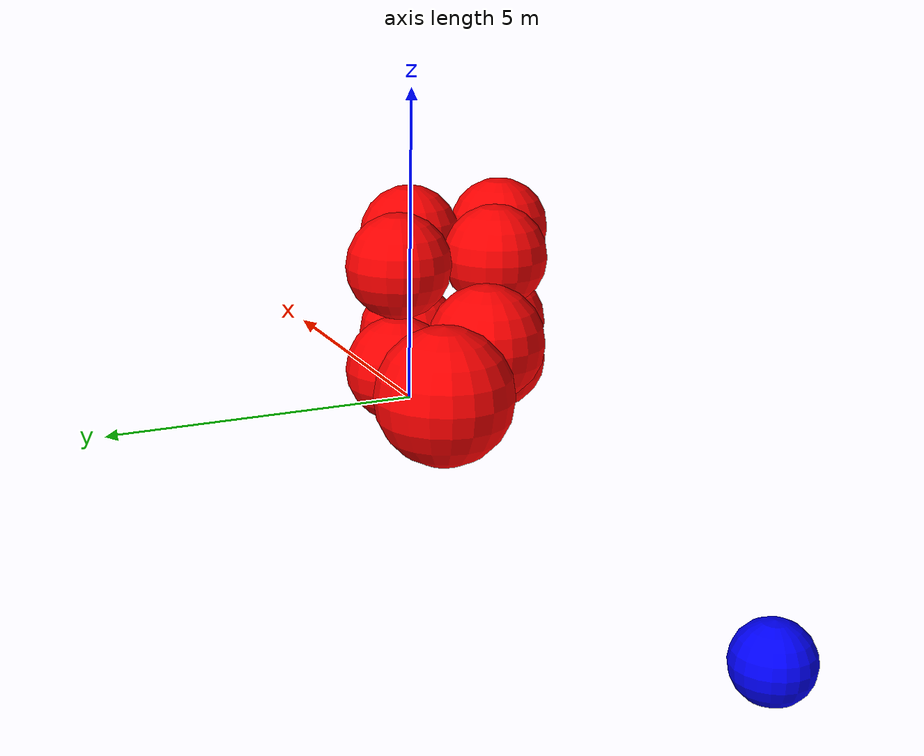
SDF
<?xml version="1.0" ?>
<sdf version="1.8">
    <world name="3d_world">
        <physics name="1ms" type="ode">
            <max_step_size>0.001</max_step_size>
            <real_time_factor>1.0</real_time_factor>
            <real_time_update_rate>1000.0</real_time_update_rate>
        </physics>
        <gravity>0 0 0</gravity>

        <plugin
            filename="gz-sim-physics-system"
            name="gz::sim::v8::systems::Physics">
        </plugin>
        <plugin
            filename="libignition-gazebo-user-commands-system.so"
            name="ignition::gazebo::systems::UserCommands">
        </plugin>
        <plugin
            filename="gz-sim-scene-broadcaster-system"
            name="gz::sim::systems::SceneBroadcaster">
        </plugin>
        <plugin
            filename="gz-sim-sensors-system"
            name="gz::sim::systems::Sensors">
            <render_engine>ogre2</render_engine>
        </plugin>

        <light type="directional" name="sun">
            <cast_shadows>true</cast_shadows>
            <pose>0 0 10 0 0 0</pose>
            <diffuse>0.8 0.8 0.8 1</diffuse>
            <specular>0.2 0.2 0.2 1</specular>
            <attenuation>
                <range>1000</range>
                <constant>0.9</constant>
                <linear>0.01</linear>
                <quadratic>0.001</quadratic>
            </attenuation>
            <direction>-0.5 0.1 -0.9</direction>
        </light>

        <gui fullscreen="0">
            <camera name="user_camera">
                <pose>5.0 0.0 20.0 0.0 1.5708 1.5708</pose>
                <view_controller>orbit</view_controller>
            </camera>
        </gui>

        <!-- AGENTE -->
        <model name='agente' canonical_link='chassis'>
            <pose relative_to='world'>-10.0 0 0.0 0 0 0</pose>
            <link name='chassis'>
                <pose relative_to='__model__'>0.0 0 0.0 0 0 0</pose>
                <inertial>
                    <mass>1.14395</mass>
                    <inertia>
                        <ixx>0.095329</ixx>
                        <ixy>0</ixy>
                        <ixz>0</ixz>
                        <iyy>0.381317</iyy>
                        <iyz>0</iyz>
                        <izz>0.476646</izz>
                    </inertia>
                </inertial>
                <visual name='visual'>
                    <geometry>
                        <sphere>
                            <radius>0.5</radius>
                        </sphere>
                    </geometry>
                    <material>
                        <ambient>0.0 0.0 1.0 1</ambient>
                        <diffuse>0.0 0.0 1.0 1</diffuse>
                        <specular>0.0 0.0 1.0 1</specular>
                    </material>
                </visual>
                <collision name='collision'>
                    <geometry>
                        <sphere>
                            <radius>0.5</radius>
                      <sphere>
                            <radius>0.5</radius>
                        </sphere>  </sphere>
                    </geometry>
                </collision>
                <enable_gravity>false</enable_gravity>
            </link>

            <link name='lidar_link'>
                <pose relative_to='chassis'>0.0 0 0.1 0 0 0</pose>
                <inertial>
                    <mass>0.1</mass>
                    <inertia>
                        <ixx>0.000166667</ixx>
                        <iyy>0.000166667</iyy>
                        <izz>0.000166667</izz>
                    </inertia>
                </inertial>
                <collision name='collision'>
                    <geometry>
                        <cylinder>
                            <radius>0.05</radius>
                            <length>0.1</length>
                        </cylinder>
                    </geometry>
                </collision>
                <visual name='visual'>
                    <geometry>
                        <cylinder>
                            <radius>0.05</radius>
                            <length>0.1</length>
                        </cylinder>
                    </geometry>
                    <material>
                        <ambient>0.0 1.0 0.0 1</ambient>
                        <diffuse>0.0 1.0 0.0 1</diffuse>
                        <specular>0.0 1.0 0.0 1</specular>
                    </material>
                </visual>
                <sensor name="lidar" type="gpu_lidar">
                    <topic>scan</topic>
                    <update_rate>10</update_rate>
                    <lidar>
                        <scan>
                            <horizontal>
                                <samples>5000</samples>
                                <resolution>1</resolution>
                                <min_angle>-3.14159</min_angle>
                                <max_angle>3.14159</max_angle>
                            </horizontal>
                        </scan>
                        <range>
                            <min>0.1</min>
                            <max>10.0</max>
                            <resolution>0.01</resolution>
                        </range>
                    </lidar>
                    <visualize>true</visualize>
                    <always_on>true</always_on>
                    <update_rate>10</update_rate>
                    <pose_frame>lidar</pose_frame>
                </sensor>
                <enable_gravity>false</enable_gravity>
            </link>

            <joint name="lidar_joint" type="fixed">
                <parent>chassis</parent>
                <child>lidar_link</child>
            </joint>

            <plugin
                filename="ignition-gazebo-joint-state-publisher-system"
                name="ignition::gazebo::systems::JointStatePublisher">
            </plugin>
            <plugin
                filename="ignition-gazebo-odometry-publisher-system"
                name="ignition::gazebo::systems::OdometryPublisher">
                <dimensions>3</dimensions>
            </plugin>
            <plugin
                filename="ignition-gazebo-velocity-control-system"
                name="ignition::gazebo::systems::VelocityControl">
                <initial_linear>0.0 0 0</initial_linear>
                <initial_angular>0 0 0.0</initial_angular>
            </plugin>
            <plugin
                filename="libignition-gazebo-pose-publisher-system.so"
                name="ignition::gazebo::systems::PosePublisher">
                <topic>/agente/pose</topic>
                <frame_id>agente</frame_id>
                <update_rate>30</update_rate>
            </plugin>
        </model>

        <!-- OBSTACLE 1 (Cluster 1) -->
        <model name='obstacle_1' canonical_link='obstacle'>
            <static>true</static>
            <pose relative_to='world'>4.51 -3.72 -1.00 0 0 0</pose>
            <link name='obstacle'>
                <pose relative_to='__model__'>0.0 0 0.0 0 0 0</pose>
                <visual name='visual'>
                    <geometry>
                        <sphere>
                            <radius>1.00</radius>
                        </sphere>
                    </geometry>
                    <material>
                        <ambient>1.0 0.0 0.0 1</ambient>
                        <diffuse>1.0 0.0 0.0 1</diffuse>
                        <specular>1.0 0.0 0.0 1</specular>
                    </material>
                </visual>
                <collision name='collision'>
                    <geometry>
                        <sphere>
                            <radius>1.00</radius>
                        </sphere>
                    </geometry>
                </collision>
                <enable_gravity>false</enable_gravity>
            </link>

            <plugin
                filename="ignition-gazebo-velocity-control-system"
                name="ignition::gazebo::systems::VelocityControl">
                <initial_linear>0.00 0.00 0.00</initial_linear>
                <initial_angular>0 0 0</initial_angular>
            </plugin>

            <plugin
                filename="ignition-gazebo-odometry-publisher-system"
                name="ignition::gazebo::systems::OdometryPublisher">
                <dimensions>3</dimensions>
            </plugin>
        </model>

        <!-- OBSTACLE 2 (Cluster 1) -->
        <model name='obstacle_2' canonical_link='obstacle'>
            <static>true</static>
            <pose relative_to='world'>4.51 -1.72 -1.00 0 0 0</pose>
            <link name='obstacle'>
                <pose relative_to='__model__'>0.0 0 0.0 0 0 0</pose>
                <visual name='visual'>
                    <geometry>
                        <sphere>
                            <radius>1.00</radius>
                        </sphere>
                    </geometry>
                    <material>
                        <ambient>1.0 0.0 0.0 1</ambient>
                        <diffuse>1.0 0.0 0.0 1</diffuse>
                        <specular>1.0 0.0 0.0 1</specular>
                    </material>
                </visual>
                <collision name='collision'>
                    <geometry>
                        <sphere>
                            <radius>1.00</radius>
                        </sphere>
                    </geometry>
                </collision>
                <enable_gravity>false</enable_gravity>
            </link>

            <plugin
                filename="ignition-gazebo-velocity-control-system"
                name="ignition::gazebo::systems::VelocityControl">
                <initial_linear>0.00 0.00 0.00</initial_linear>
                <initial_angular>0 0 0</initial_angular>
            </plugin>

            <plugin
                filename="ignition-gazebo-odometry-publisher-system"
                name="ignition::gazebo::systems::OdometryPublisher">
                <dimensions>3</dimensions>
            </plugin>
        </model>

        <!-- OBSTACLE 3 (Cluster 1) -->
        <model name='obstacle_3' canonical_link='obstacle'>
            <static>true</static>
            <pose relative_to='world'>4.51 -3.72 1.00 0 0 0</pose>
            <link name='obstacle'>
                <pose relative_to='__model__'>0.0 0 0.0 0 0 0</pose>
                <visual name='visual'>
                    <geometry>
                        <sphere>
                            <radius>1.00</radius>
                        </sphere>
                    </geometry>
                    <material>
                        <ambient>1.0 0.0 0.0 1</ambient>
                        <diffuse>1.0 0.0 0.0 1</diffuse>
                        <specular>1.0 0.0 0.0 1</specular>
                    </material>
                </visual>
                <collision name='collision'>
                    <geometry>
                        <sphere>
                            <radius>1.00</radius>
                        </sphere>
                    </geometry>
                </collision>
                <enable_gravity>false</enable_gravity>
            </link>

            <plugin
                filename="ignition-gazebo-velocity-control-system"
                name="ignition::gazebo::systems::VelocityControl">
                <initial_linear>0.00 0.00 0.00</initial_linear>
                <initial_angular>0 0 0</initial_angular>
            </plugin>

            <plugin
                filename="ignition-gazebo-odometry-publisher-system"
                name="ignition::gazebo::systems::OdometryPublisher">
                <dimensions>3</dimensions>
            </plugin>
        </model>

        <!-- OBSTACLE 4 (Cluster 1) -->
        <model name='obstacle_4' canonical_link='obstacle'>
            <static>true</static>
            <pose relative_to='world'>4.51 -1.72 1.00 0 0 0</pose>
            <link name='obstacle'>
                <pose relative_to='__model__'>0.0 0 0.0 0 0 0</pose>
                <visual name='visual'>
                    <geometry>
                        <sphere>
                            <radius>1.00</radius>
                        </sphere>
                    </geometry>
                    <material>
                        <ambient>1.0 0.0 0.0 1</ambient>
                        <diffuse>1.0 0.0 0.0 1</diffuse>
                        <specular>1.0 0.0 0.0 1</specular>
                    </material>
                </visual>
                <collision name='collision'>
                    <geometry>
                        <sphere>
                            <radius>1.00</radius>
                        </sphere>
                    </geometry>
                </collision>
                <enable_gravity>false</enable_gravity>
            </link>

            <plugin
                filename="ignition-gazebo-velocity-control-system"
                name="ignition::gazebo::systems::VelocityControl">
                <initial_linear>0.00 0.00 0.00</initial_linear>
                <initial_angular>0 0 0</initial_angular>
            </plugin>

            <plugin
                filename="ignition-gazebo-odometry-publisher-system"
                name="ignition::gazebo::systems::OdometryPublisher">
                <dimensions>3</dimensions>
            </plugin>
        </model>

        <!-- OBSTACLE 5 (Cluster 2) -->
        <model name='obstacle_5' canonical_link='obstacle'>
            <static>true</static>
            <pose relative_to='world'>6.86 -4.95 -1.00 0 0 0</pose>
            <link name='obstacle'>
                <pose relative_to='__model__'>0.0 0 0.0 0 0 0</pose>
                <visual name='visual'>
                    <geometry>
                        <sphere>
                            <radius>1.00</radius>
                        </sphere>
                    </geometry>
                    <material>
                        <ambient>1.0 0.0 0.0 1</ambient>
                        <diffuse>1.0 0.0 0.0 1</diffuse>
                        <specular>1.0 0.0 0.0 1</specular>
                    </material>
                </visual>
                <collision name='collision'>
                    <geometry>
                        <sphere>
                            <radius>1.00</radius>
                        </sphere>
                    </geometry>
                </collision>
                <enable_gravity>false</enable_gravity>
            </link>

            <plugin
                filename="ignition-gazebo-velocity-control-system"
                name="ignition::gazebo::systems::VelocityControl">
                <initial_linear>0.00 0.00 0.00</initial_linear>
                <initial_angular>0 0 0</initial_angular>
            </plugin>

            <plugin
                filename="ignition-gazebo-odometry-publisher-system"
                name="ignition::gazebo::systems::OdometryPublisher">
                <dimensions>3</dimensions>
            </plugin>
        </model>

        <!-- OBSTACLE 6 (Cluster 2) -->
        <model name='obstacle_6' canonical_link='obstacle'>
            <static>true</static>
            <pose relative_to='world'>6.86 -2.95 -1.00 0 0 0</pose>
            <link name='obstacle'>
                <pose relative_to='__model__'>0.0 0 0.0 0 0 0</pose>
                <visual name='visual'>
                    <geometry>
                        <sphere>
                            <radius>1.00</radius>
                        </sphere>
                    </geometry>
                    <material>
                        <ambient>1.0 0.0 0.0 1</ambient>
                        <diffuse>1.0 0.0 0.0 1</diffuse>
                        <specular>1.0 0.0 0.0 1</specular>
                    </material>
                </visual>
                <collision name='collision'>
                    <geometry>
                        <sphere>
                            <radius>1.00</radius>
                        </sphere>
                    </geometry>
                </collision>
                <enable_gravity>false</enable_gravity>
            </link>

            <plugin
                filename="ignition-gazebo-velocity-control-system"
                name="ignition::gazebo::systems::VelocityControl">
                <initial_linear>0.00 0.00 0.00</initial_linear>
                <initial_angular>0 0 0</initial_angular>
            </plugin>

            <plugin
                filename="ignition-gazebo-odometry-publisher-system"
                name="ignition::gazebo::systems::OdometryPublisher">
                <dimensions>3</dimensions>
            </plugin>
        </model>

        <!-- OBSTACLE 7 (Cluster 2) -->
        <model name='obstacle_7' canonical_link='obstacle'>
            <static>true</static>
            <pose relative_to='world'>6.86 -4.95 1.00 0 0 0</pose>
            <link name='obstacle'>
                <pose relative_to='__model__'>0.0 0 0.0 0 0 0</pose>
                <visual name='visual'>
                    <geometry>
                        <sphere>
                            <radius>1.00</radius>
                        </sphere>
                    </geometry>
                    <material>
                        <ambient>1.0 0.0 0.0 1</ambient>
                        <diffuse>1.0 0.0 0.0 1</diffuse>
                        <specular>1.0 0.0 0.0 1</specular>
                    </material>
                </visual>
                <collision name='collision'>
                    <geometry>
                        <sphere>
                            <radius>1.00</radius>
                        </sphere>
                    </geometry>
                </collision>
                <enable_gravity>false</enable_gravity>
            </link>

            <plugin
                filename="ignition-gazebo-velocity-control-system"
                name="ignition::gazebo::systems::VelocityControl">
                <initial_linear>0.00 0.00 0.00</initial_linear>
                <initial_angular>0 0 0</initial_angular>
            </plugin>

            <plugin
                filename="ignition-gazebo-odometry-publisher-system"
                name="ignition::gazebo::systems::OdometryPublisher">
                <dimensions>3</dimensions>
            </plugin>
        </model>

        <!-- OBSTACLE 8 (Cluster 2) -->
        <model name='obstacle_8' canonical_link='obstacle'>
            <static>true</static>
            <pose relative_to='world'>6.86 -2.95 1.00 0 0 0</pose>
            <link name='obstacle'>
                <pose relative_to='__model__'>0.0 0 0.0 0 0 0</pose>
                <visual name='visual'>
                    <geometry>
                        <sphere>
                            <radius>1.00</radius>
                        </sphere>
                    </geometry>
                    <material>
                        <ambient>1.0 0.0 0.0 1</ambient>
                        <diffuse>1.0 0.0 0.0 1</diffuse>
                        <specular>1.0 0.0 0.0 1</specular>
                    </material>
                </visual>
                <collision name='collision'>
                    <geometry>
                        <sphere>
                            <radius>1.00</radius>
                        </sphere>
                    </geometry>
                </collision>
                <enable_gravity>false</enable_gravity>
            </link>

            <plugin
                filename="ignition-gazebo-velocity-control-system"
                name="ignition::gazebo::systems::VelocityControl">
                <initial_linear>0.00 0.00 0.00</initial_linear>
                <initial_angular>0 0 0</initial_angular>
            </plugin>

            <plugin
                filename="ignition-gazebo-odometry-publisher-system"
                name="ignition::gazebo::systems::OdometryPublisher">
                <dimensions>3</dimensions>
            </plugin>
        </model>

        <!-- OBSTACLE 9 (Cluster 3) -->
        <model name='obstacle_9' canonical_link='obstacle'>
            <static>false</static>
            <pose relative_to='world'>0.87 -1.78 0.49 0 0 0</pose>
            <link name='obstacle'>
                <pose relative_to='__model__'>0.0 0 0.0 0 0 0</pose>
                <visual name='visual'>
                    <geometry>
                        <sphere>
                            <radius>1.00</radius>
                        </sphere>
                    </geometry>
                    <material>
                        <ambient>1.0 0.0 0.0 1</ambient>
                        <diffuse>1.0 0.0 0.0 1</diffuse>
                        <specular>1.0 0.0 0.0 1</specular>
                    </material>
                </visual>
                <collision name='collision'>
                    <geometry>
                        <sphere>
                            <radius>1.00</radius>
                        </sphere>
                    </geometry>
                </collision>
                <enable_gravity>false</enable_gravity>
            </link>

            <plugin
                filename="ignition-gazebo-velocity-control-system"
                name="ignition::gazebo::systems::VelocityControl">
                <initial_linear>0.00 1.39 -0.40</initial_linear>
                <initial_angular>0 0 0</initial_angular>
            </plugin>

            <plugin
                filename="ignition-gazebo-odometry-publisher-system"
                name="ignition::gazebo::systems::OdometryPublisher">
                <dimensions>3</dimensions>
            </plugin>
        </model>

        <!-- OBSTACLE 10 (Cluster 4) -->
        <model name='obstacle_10' canonical_link='obstacle'>
            <static>false</static>
            <pose relative_to='world'>-3.50 1.00 1.21 0 0 0</pose>
            <link name='obstacle'>
                <pose relative_to='__model__'>0.0 0 0.0 0 0 0</pose>
                <visual name='visual'>
                    <geometry>
                        <sphere>
                            <radius>1.00</radius>
                        </sphere>
                    </geometry>
                    <material>
                        <ambient>1.0 0.0 0.0 1</ambient>
                        <diffuse>1.0 0.0 0.0 1</diffuse>
                        <specular>1.0 0.0 0.0 1</specular>
                    </material>
                </visual>
                <collision name='collision'>
                    <geometry>
                        <sphere>
                            <radius>1.00</radius>
                        </sphere>
                    </geometry>
                </collision>
                <enable_gravity>false</enable_gravity>
            </link>

            <plugin
                filename="ignition-gazebo-velocity-control-system"
                name="ignition::gazebo::systems::VelocityControl">
                <initial_linear>0.00 -1.15 -1.30</initial_linear>
                <initial_angular>0 0 0</initial_angular>
            </plugin>

            <plugin
                filename="ignition-gazebo-odometry-publisher-system"
                name="ignition::gazebo::systems::OdometryPublisher">
                <dimensions>3</dimensions>
            </plugin>
        </model>

    </world>
</sdf>
